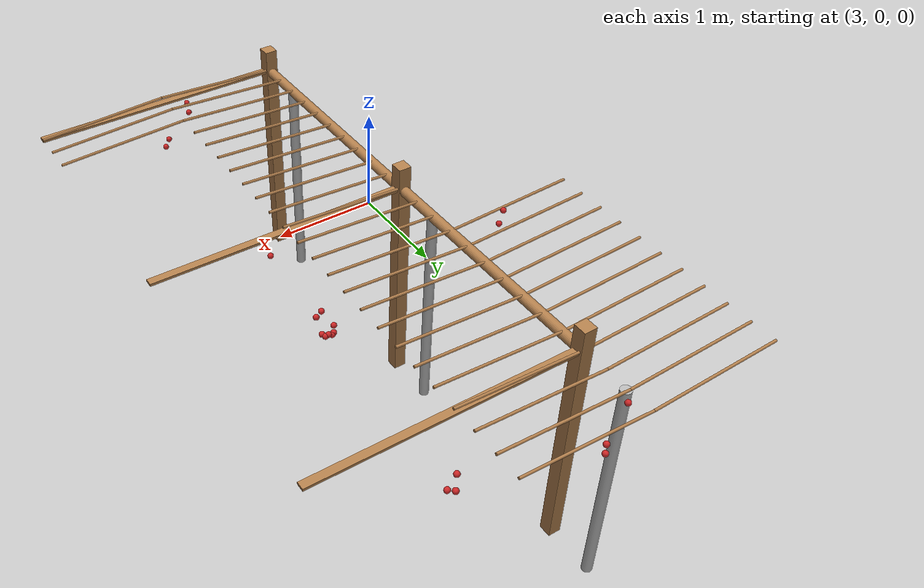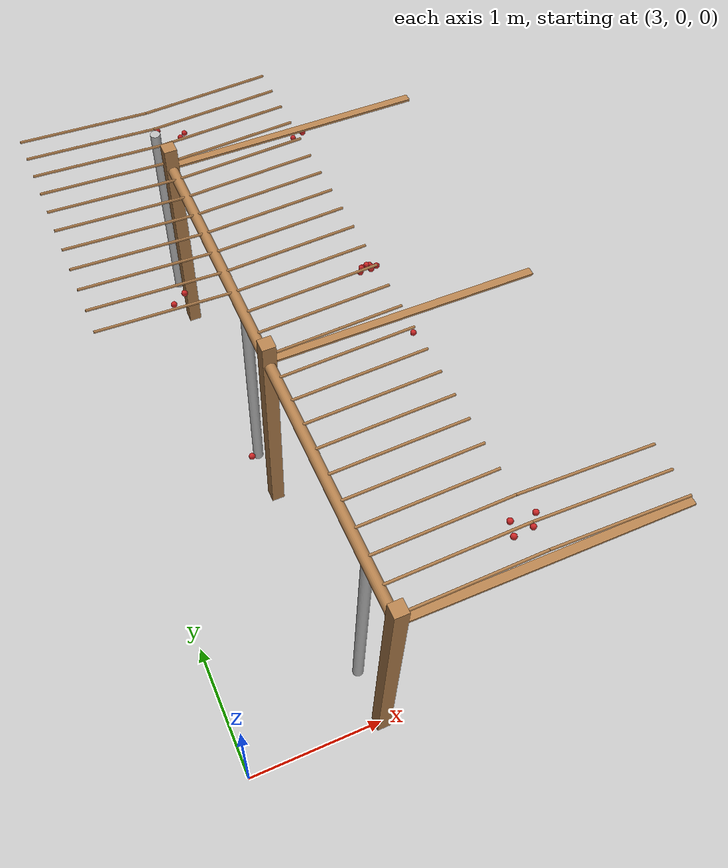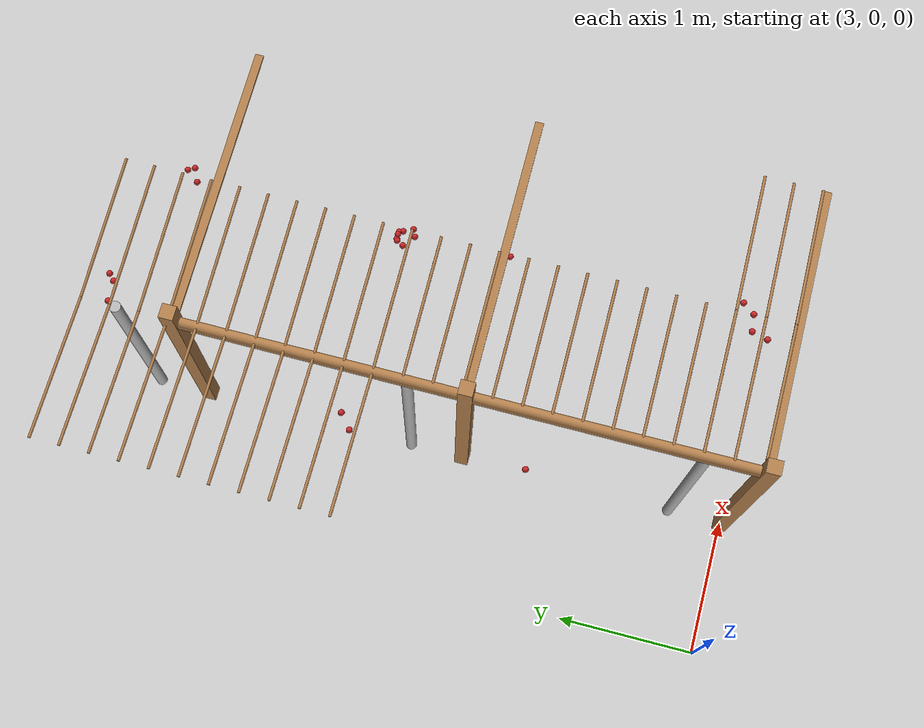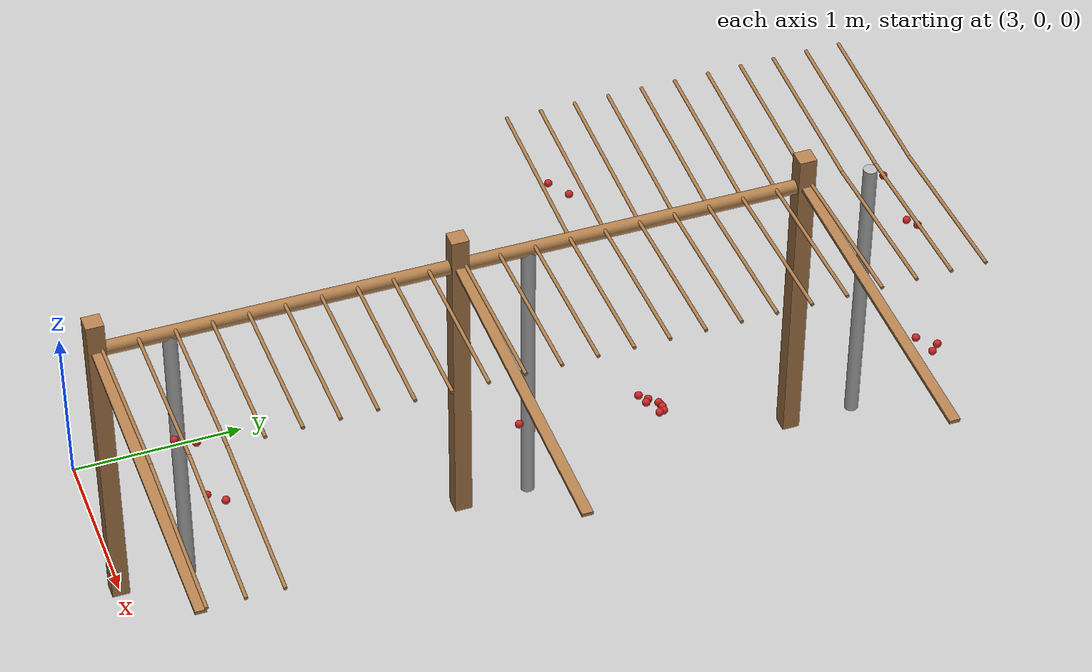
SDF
<sdf version="1.4">
 <model name="pergola">
  <include><name>post_22</name><pose>4.0 0.0 0 0 0 0</pose><uri>model://post</uri></include>
  <include><name>post_23</name><pose>4.0 2.0 0 0 0 0</pose><uri>model://post</uri></include>
  <include><name>post_24</name><pose>4.0 4.0 0 0 0 0</pose><uri>model://post</uri></include>
  <link name="beam_22">
   <pose>5.0 0.0 1.81 0 0 0</pose>
   <collision name="collision"><geometry><box><size>2.0 0.06 0.02</size></box></geometry></collision>
   <visual name="visual">
    <geometry><box><size>2.0 0.06 0.02</size></box></geometry>
    <material><script><name>Gazebo/Wood</name></script></material>
   </visual>
   <inertial>
    <mass>5</mass>
    <inertia>
     <ixx>0.0016666666666666668</ixx>
     <ixy>0.0</ixy>
     <ixz>0.0</ixz>
     <iyy>1.6681666666666664</iyy>
     <iyz>0.0</iyz>
     <izz>1.6668333333333332</izz>
    </inertia>
   </inertial>
  </link>
  <link name="beam_23">
   <pose>5.0 2.0 1.81 0 0 0</pose>
   <collision name="collision"><geometry><box><size>2.0 0.06 0.02</size></box></geometry></collision>
   <visual name="visual">
    <geometry><box><size>2.0 0.06 0.02</size></box></geometry>
    <material><script><name>Gazebo/Wood</name></script></material>
   </visual>
   <inertial>
    <mass>5</mass>
    <inertia>
     <ixx>0.0016666666666666668</ixx>
     <ixy>0.0</ixy>
     <ixz>0.0</ixz>
     <iyy>1.6681666666666664</iyy>
     <iyz>0.0</iyz>
     <izz>1.6668333333333332</izz>
    </inertia>
   </inertial>
  </link>
  <link name="beam_24">
   <pose>5.0 4.0 1.81 0 0 0</pose>
   <collision name="collision"><geometry><box><size>2.0 0.06 0.02</size></box></geometry></collision>
   <visual name="visual">
    <geometry><box><size>2.0 0.06 0.02</size></box></geometry>
    <material><script><name>Gazebo/Wood</name></script></material>
   </visual>
   <inertial>
    <mass>5</mass>
    <inertia>
     <ixx>0.0016666666666666668</ixx>
     <ixy>0.0</ixy>
     <ixz>0.0</ixz>
     <iyy>1.6681666666666664</iyy>
     <iyz>0.0</iyz>
     <izz>1.6668333333333332</izz>
    </inertia>
   </inertial>
  </link>
  <include><name>tree_20</name><pose>4.0 0.4 0 0 0 0</pose><uri>model://tree_trunk</uri></include>
  <include><name>tree_21</name><pose>4.0 2.4 0 0 0 0</pose><uri>model://tree_trunk</uri></include>
  <include><name>tree_22</name><pose>4.0 4.4 0 0 0 0</pose><uri>model://tree_trunk</uri></include>
  <link name="baseBranch_20">
   <pose>4.0 1.0 1.8 1.5707963267948966 0 0</pose>
   <collision name="collision">
    <geometry><cylinder><radius>0.04</radius><length>1.94</length></cylinder></geometry>
   </collision>
   <visual name="visual">
    <geometry><cylinder><radius>0.04</radius><length>1.94</length></cylinder></geometry>
    <material><script><name>Gazebo/WoodFloor</name></script></material>
   </visual>
   <inertial>
    <mass>10</mass>
    <inertia>
     <ixx>3.140333333333333</ixx>
     <ixy>0.0</ixy>
     <ixz>0.0</ixz>
     <iyy>3.140333333333333</iyy>
     <iyz>0.0</iyz>
     <izz>0.008</izz>
    </inertia>
   </inertial>
  </link>
  <link name="baseBranch_21">
   <pose>4.0 3.0 1.8 1.5707963267948966 0 0</pose>
   <collision name="collision">
    <geometry><cylinder><radius>0.04</radius><length>1.94</length></cylinder></geometry>
   </collision>
   <visual name="visual">
    <geometry><cylinder><radius>0.04</radius><length>1.94</length></cylinder></geometry>
    <material><script><name>Gazebo/WoodFloor</name></script></material>
   </visual>
   <inertial>
    <mass>10</mass>
    <inertia>
     <ixx>3.140333333333333</ixx>
     <ixy>0.0</ixy>
     <ixz>0.0</ixz>
     <iyy>3.140333333333333</iyy>
     <iyz>0.0</iyz>
     <izz>0.008</izz>
    </inertia>
   </inertial>
  </link>
  <link name="vine_227">
   <pose>3.5 2.63 1.85 0 -1.5208379310729538 0</pose>
   <collision name="collision">
    <geometry><cylinder><radius>0.01</radius><length>1.0012492197250393</length></cylinder></geometry>
   </collision>
   <visual name="visual">
    <geometry><cylinder><radius>0.01</radius><length>1.0012492197250393</length></cylinder></geometry>
    <material><script><name>Gazebo/WoodFloor</name></script></material>
   </visual>
   <inertial>
    <mass>5</mass>
    <inertia>
     <ixx>0.41783333333333345</ixx>
     <ixy>0.0</ixy>
     <ixz>0.0</ixz>
     <iyy>0.41783333333333345</iyy>
     <iyz>0.0</iyz>
     <izz>0.00025</izz>
    </inertia>
   </inertial>
  </link>
  <link name="vine_229">
   <pose>3.5 2.83 1.85 0 -1.5208379310729538 0</pose>
   <collision name="collision">
    <geometry><cylinder><radius>0.01</radius><length>1.0012492197250393</length></cylinder></geometry>
   </collision>
   <visual name="visual">
    <geometry><cylinder><radius>0.01</radius><length>1.0012492197250393</length></cylinder></geometry>
    <material><script><name>Gazebo/WoodFloor</name></script></material>
   </visual>
   <inertial>
    <mass>5</mass>
    <inertia>
     <ixx>0.41783333333333345</ixx>
     <ixy>0.0</ixy>
     <ixz>0.0</ixz>
     <iyy>0.41783333333333345</iyy>
     <iyz>0.0</iyz>
     <izz>0.00025</izz>
    </inertia>
   </inertial>
  </link>
  <link name="vine_231">
   <pose>3.5 3.03 1.85 0 -1.5208379310729538 0</pose>
   <collision name="collision">
    <geometry><cylinder><radius>0.01</radius><length>1.0012492197250393</length></cylinder></geometry>
   </collision>
   <visual name="visual">
    <geometry><cylinder><radius>0.01</radius><length>1.0012492197250393</length></cylinder></geometry>
    <material><script><name>Gazebo/WoodFloor</name></script></material>
   </visual>
   <inertial>
    <mass>5</mass>
    <inertia>
     <ixx>0.41783333333333345</ixx>
     <ixy>0.0</ixy>
     <ixz>0.0</ixz>
     <iyy>0.41783333333333345</iyy>
     <iyz>0.0</iyz>
     <izz>0.00025</izz>
    </inertia>
   </inertial>
  </link>
  <link name="vine_233">
   <pose>3.5 3.23 1.85 0 -1.5208379310729538 0</pose>
   <collision name="collision">
    <geometry><cylinder><radius>0.01</radius><length>1.0012492197250393</length></cylinder></geometry>
   </collision>
   <visual name="visual">
    <geometry><cylinder><radius>0.01</radius><length>1.0012492197250393</length></cylinder></geometry>
    <material><script><name>Gazebo/WoodFloor</name></script></material>
   </visual>
   <inertial>
    <mass>5</mass>
    <inertia>
     <ixx>0.41783333333333345</ixx>
     <ixy>0.0</ixy>
     <ixz>0.0</ixz>
     <iyy>0.41783333333333345</iyy>
     <iyz>0.0</iyz>
     <izz>0.00025</izz>
    </inertia>
   </inertial>
  </link>
  <link name="vine_235">
   <pose>3.5 3.43 1.85 0 -1.5208379310729538 0</pose>
   <collision name="collision">
    <geometry><cylinder><radius>0.01</radius><length>1.0012492197250393</length></cylinder></geometry>
   </collision>
   <visual name="visual">
    <geometry><cylinder><radius>0.01</radius><length>1.0012492197250393</length></cylinder></geometry>
    <material><script><name>Gazebo/WoodFloor</name></script></material>
   </visual>
   <inertial>
    <mass>5</mass>
    <inertia>
     <ixx>0.41783333333333345</ixx>
     <ixy>0.0</ixy>
     <ixz>0.0</ixz>
     <iyy>0.41783333333333345</iyy>
     <iyz>0.0</iyz>
     <izz>0.00025</izz>
    </inertia>
   </inertial>
  </link>
  <link name="vine_237">
   <pose>3.5 3.63 1.85 0 -1.5208379310729538 0</pose>
   <collision name="collision">
    <geometry><cylinder><radius>0.01</radius><length>1.0012492197250393</length></cylinder></geometry>
   </collision>
   <visual name="visual">
    <geometry><cylinder><radius>0.01</radius><length>1.0012492197250393</length></cylinder></geometry>
    <material><script><name>Gazebo/WoodFloor</name></script></material>
   </visual>
   <inertial>
    <mass>5</mass>
    <inertia>
     <ixx>0.41783333333333345</ixx>
     <ixy>0.0</ixy>
     <ixz>0.0</ixz>
     <iyy>0.41783333333333345</iyy>
     <iyz>0.0</iyz>
     <izz>0.00025</izz>
    </inertia>
   </inertial>
  </link>
  <link name="vine_239">
   <pose>3.5 3.83 1.85 0 -1.5208379310729538 0</pose>
   <collision name="collision">
    <geometry><cylinder><radius>0.01</radius><length>1.0012492197250393</length></cylinder></geometry>
   </collision>
   <visual name="visual">
    <geometry><cylinder><radius>0.01</radius><length>1.0012492197250393</length></cylinder></geometry>
    <material><script><name>Gazebo/WoodFloor</name></script></material>
   </visual>
   <inertial>
    <mass>5</mass>
    <inertia>
     <ixx>0.41783333333333345</ixx>
     <ixy>0.0</ixy>
     <ixz>0.0</ixz>
     <iyy>0.41783333333333345</iyy>
     <iyz>0.0</iyz>
     <izz>0.00025</izz>
    </inertia>
   </inertial>
  </link>
  <link name="vine_241">
   <pose>3.5 4.03 1.85 0 -1.5208379310729538 0</pose>
   <collision name="collision">
    <geometry><cylinder><radius>0.01</radius><length>1.0012492197250393</length></cylinder></geometry>
   </collision>
   <visual name="visual">
    <geometry><cylinder><radius>0.01</radius><length>1.0012492197250393</length></cylinder></geometry>
    <material><script><name>Gazebo/WoodFloor</name></script></material>
   </visual>
   <inertial>
    <mass>5</mass>
    <inertia>
     <ixx>0.41783333333333345</ixx>
     <ixy>0.0</ixy>
     <ixz>0.0</ixz>
     <iyy>0.41783333333333345</iyy>
     <iyz>0.0</iyz>
     <izz>0.00025</izz>
    </inertia>
   </inertial>
  </link>
  <link name="vine_243">
   <pose>3.5 4.23 1.85 0 -1.5208379310729538 0</pose>
   <collision name="collision">
    <geometry><cylinder><radius>0.01</radius><length>1.0012492197250393</length></cylinder></geometry>
   </collision>
   <visual name="visual">
    <geometry><cylinder><radius>0.01</radius><length>1.0012492197250393</length></cylinder></geometry>
    <material><script><name>Gazebo/WoodFloor</name></script></material>
   </visual>
   <inertial>
    <mass>5</mass>
    <inertia>
     <ixx>0.41783333333333345</ixx>
     <ixy>0.0</ixy>
     <ixz>0.0</ixz>
     <iyy>0.41783333333333345</iyy>
     <iyz>0.0</iyz>
     <izz>0.00025</izz>
    </inertia>
   </inertial>
  </link>
  <link name="vine_245">
   <pose>3.5 4.430000000000001 1.85 0 -1.5208379310729538 0</pose>
   <collision name="collision">
    <geometry><cylinder><radius>0.01</radius><length>1.0012492197250393</length></cylinder></geometry>
   </collision>
   <visual name="visual">
    <geometry><cylinder><radius>0.01</radius><length>1.0012492197250393</length></cylinder></geometry>
    <material><script><name>Gazebo/WoodFloor</name></script></material>
   </visual>
   <inertial>
    <mass>5</mass>
    <inertia>
     <ixx>0.41783333333333345</ixx>
     <ixy>0.0</ixy>
     <ixz>0.0</ixz>
     <iyy>0.41783333333333345</iyy>
     <iyz>0.0</iyz>
     <izz>0.00025</izz>
    </inertia>
   </inertial>
  </link>
  <link name="vine_247">
   <pose>3.5 4.630000000000001 1.85 0 -1.5208379310729538 0</pose>
   <collision name="collision">
    <geometry><cylinder><radius>0.01</radius><length>1.0012492197250393</length></cylinder></geometry>
   </collision>
   <visual name="visual">
    <geometry><cylinder><radius>0.01</radius><length>1.0012492197250393</length></cylinder></geometry>
    <material><script><name>Gazebo/WoodFloor</name></script></material>
   </visual>
   <inertial>
    <mass>5</mass>
    <inertia>
     <ixx>0.41783333333333345</ixx>
     <ixy>0.0</ixy>
     <ixz>0.0</ixz>
     <iyy>0.41783333333333345</iyy>
     <iyz>0.0</iyz>
     <izz>0.00025</izz>
    </inertia>
   </inertial>
  </link>
  <link name="vine_400">
   <pose>4.5 0.03 1.85 0 1.5208379310729538 0</pose>
   <collision name="collision">
    <geometry><cylinder><radius>0.01</radius><length>1.0012492197250393</length></cylinder></geometry>
   </collision>
   <visual name="visual">
    <geometry><cylinder><radius>0.01</radius><length>1.0012492197250393</length></cylinder></geometry>
    <material><script><name>Gazebo/WoodFloor</name></script></material>
   </visual>
   <inertial>
    <mass>5</mass>
    <inertia>
     <ixx>0.41783333333333345</ixx>
     <ixy>0.0</ixy>
     <ixz>0.0</ixz>
     <iyy>0.41783333333333345</iyy>
     <iyz>0.0</iyz>
     <izz>0.00025</izz>
    </inertia>
   </inertial>
  </link>
  <link name="vine_401">
   <pose>5.5 0.03 1.85 0 -1.5208379310729538 0</pose>
   <collision name="collision">
    <geometry><cylinder><radius>0.01</radius><length>1.0012492197250393</length></cylinder></geometry>
   </collision>
   <visual name="visual">
    <geometry><cylinder><radius>0.01</radius><length>1.0012492197250393</length></cylinder></geometry>
    <material><script><name>Gazebo/WoodFloor</name></script></material>
   </visual>
   <inertial>
    <mass>5</mass>
    <inertia>
     <ixx>0.41783333333333345</ixx>
     <ixy>0.0</ixy>
     <ixz>0.0</ixz>
     <iyy>0.41783333333333345</iyy>
     <iyz>0.0</iyz>
     <izz>0.00025</izz>
    </inertia>
   </inertial>
  </link>
  <link name="vine_402">
   <pose>4.5 0.23 1.85 0 1.5208379310729538 0</pose>
   <collision name="collision">
    <geometry><cylinder><radius>0.01</radius><length>1.0012492197250393</length></cylinder></geometry>
   </collision>
   <visual name="visual">
    <geometry><cylinder><radius>0.01</radius><length>1.0012492197250393</length></cylinder></geometry>
    <material><script><name>Gazebo/WoodFloor</name></script></material>
   </visual>
   <inertial>
    <mass>5</mass>
    <inertia>
     <ixx>0.41783333333333345</ixx>
     <ixy>0.0</ixy>
     <ixz>0.0</ixz>
     <iyy>0.41783333333333345</iyy>
     <iyz>0.0</iyz>
     <izz>0.00025</izz>
    </inertia>
   </inertial>
  </link>
  <link name="vine_403">
   <pose>5.5 0.23 1.85 0 -1.5208379310729538 0</pose>
   <collision name="collision">
    <geometry><cylinder><radius>0.01</radius><length>1.0012492197250393</length></cylinder></geometry>
   </collision>
   <visual name="visual">
    <geometry><cylinder><radius>0.01</radius><length>1.0012492197250393</length></cylinder></geometry>
    <material><script><name>Gazebo/WoodFloor</name></script></material>
   </visual>
   <inertial>
    <mass>5</mass>
    <inertia>
     <ixx>0.41783333333333345</ixx>
     <ixy>0.0</ixy>
     <ixz>0.0</ixz>
     <iyy>0.41783333333333345</iyy>
     <iyz>0.0</iyz>
     <izz>0.00025</izz>
    </inertia>
   </inertial>
  </link>
  <link name="vine_404">
   <pose>4.5 0.43000000000000005 1.85 0 1.5208379310729538 0</pose>
   <collision name="collision">
    <geometry><cylinder><radius>0.01</radius><length>1.0012492197250393</length></cylinder></geometry>
   </collision>
   <visual name="visual">
    <geometry><cylinder><radius>0.01</radius><length>1.0012492197250393</length></cylinder></geometry>
    <material><script><name>Gazebo/WoodFloor</name></script></material>
   </visual>
   <inertial>
    <mass>5</mass>
    <inertia>
     <ixx>0.41783333333333345</ixx>
     <ixy>0.0</ixy>
     <ixz>0.0</ixz>
     <iyy>0.41783333333333345</iyy>
     <iyz>0.0</iyz>
     <izz>0.00025</izz>
    </inertia>
   </inertial>
  </link>
  <link name="vine_405">
   <pose>5.5 0.43000000000000005 1.85 0 -1.5208379310729538 0</pose>
   <collision name="collision">
    <geometry><cylinder><radius>0.01</radius><length>1.0012492197250393</length></cylinder></geometry>
   </collision>
   <visual name="visual">
    <geometry><cylinder><radius>0.01</radius><length>1.0012492197250393</length></cylinder></geometry>
    <material><script><name>Gazebo/WoodFloor</name></script></material>
   </visual>
   <inertial>
    <mass>5</mass>
    <inertia>
     <ixx>0.41783333333333345</ixx>
     <ixy>0.0</ixy>
     <ixz>0.0</ixz>
     <iyy>0.41783333333333345</iyy>
     <iyz>0.0</iyz>
     <izz>0.00025</izz>
    </inertia>
   </inertial>
  </link>
  <link name="vine_406">
   <pose>4.5 0.6300000000000001 1.85 0 1.5208379310729538 0</pose>
   <collision name="collision">
    <geometry><cylinder><radius>0.01</radius><length>1.0012492197250393</length></cylinder></geometry>
   </collision>
   <visual name="visual">
    <geometry><cylinder><radius>0.01</radius><length>1.0012492197250393</length></cylinder></geometry>
    <material><script><name>Gazebo/WoodFloor</name></script></material>
   </visual>
   <inertial>
    <mass>5</mass>
    <inertia>
     <ixx>0.41783333333333345</ixx>
     <ixy>0.0</ixy>
     <ixz>0.0</ixz>
     <iyy>0.41783333333333345</iyy>
     <iyz>0.0</iyz>
     <izz>0.00025</izz>
    </inertia>
   </inertial>
  </link>
  <link name="vine_408">
   <pose>4.5 0.8300000000000001 1.85 0 1.5208379310729538 0</pose>
   <collision name="collision">
    <geometry><cylinder><radius>0.01</radius><length>1.0012492197250393</length></cylinder></geometry>
   </collision>
   <visual name="visual">
    <geometry><cylinder><radius>0.01</radius><length>1.0012492197250393</length></cylinder></geometry>
    <material><script><name>Gazebo/WoodFloor</name></script></material>
   </visual>
   <inertial>
    <mass>5</mass>
    <inertia>
     <ixx>0.41783333333333345</ixx>
     <ixy>0.0</ixy>
     <ixz>0.0</ixz>
     <iyy>0.41783333333333345</iyy>
     <iyz>0.0</iyz>
     <izz>0.00025</izz>
    </inertia>
   </inertial>
  </link>
  <link name="vine_410">
   <pose>4.5 1.03 1.85 0 1.5208379310729538 0</pose>
   <collision name="collision">
    <geometry><cylinder><radius>0.01</radius><length>1.0012492197250393</length></cylinder></geometry>
   </collision>
   <visual name="visual">
    <geometry><cylinder><radius>0.01</radius><length>1.0012492197250393</length></cylinder></geometry>
    <material><script><name>Gazebo/WoodFloor</name></script></material>
   </visual>
   <inertial>
    <mass>5</mass>
    <inertia>
     <ixx>0.41783333333333345</ixx>
     <ixy>0.0</ixy>
     <ixz>0.0</ixz>
     <iyy>0.41783333333333345</iyy>
     <iyz>0.0</iyz>
     <izz>0.00025</izz>
    </inertia>
   </inertial>
  </link>
  <link name="vine_412">
   <pose>4.5 1.2300000000000002 1.85 0 1.5208379310729538 0</pose>
   <collision name="collision">
    <geometry><cylinder><radius>0.01</radius><length>1.0012492197250393</length></cylinder></geometry>
   </collision>
   <visual name="visual">
    <geometry><cylinder><radius>0.01</radius><length>1.0012492197250393</length></cylinder></geometry>
    <material><script><name>Gazebo/WoodFloor</name></script></material>
   </visual>
   <inertial>
    <mass>5</mass>
    <inertia>
     <ixx>0.41783333333333345</ixx>
     <ixy>0.0</ixy>
     <ixz>0.0</ixz>
     <iyy>0.41783333333333345</iyy>
     <iyz>0.0</iyz>
     <izz>0.00025</izz>
    </inertia>
   </inertial>
  </link>
  <link name="vine_414">
   <pose>4.5 1.4300000000000002 1.85 0 1.5208379310729538 0</pose>
   <collision name="collision">
    <geometry><cylinder><radius>0.01</radius><length>1.0012492197250393</length></cylinder></geometry>
   </collision>
   <visual name="visual">
    <geometry><cylinder><radius>0.01</radius><length>1.0012492197250393</length></cylinder></geometry>
    <material><script><name>Gazebo/WoodFloor</name></script></material>
   </visual>
   <inertial>
    <mass>5</mass>
    <inertia>
     <ixx>0.41783333333333345</ixx>
     <ixy>0.0</ixy>
     <ixz>0.0</ixz>
     <iyy>0.41783333333333345</iyy>
     <iyz>0.0</iyz>
     <izz>0.00025</izz>
    </inertia>
   </inertial>
  </link>
  <link name="vine_416">
   <pose>4.5 1.6300000000000001 1.85 0 1.5208379310729538 0</pose>
   <collision name="collision">
    <geometry><cylinder><radius>0.01</radius><length>1.0012492197250393</length></cylinder></geometry>
   </collision>
   <visual name="visual">
    <geometry><cylinder><radius>0.01</radius><length>1.0012492197250393</length></cylinder></geometry>
    <material><script><name>Gazebo/WoodFloor</name></script></material>
   </visual>
   <inertial>
    <mass>5</mass>
    <inertia>
     <ixx>0.41783333333333345</ixx>
     <ixy>0.0</ixy>
     <ixz>0.0</ixz>
     <iyy>0.41783333333333345</iyy>
     <iyz>0.0</iyz>
     <izz>0.00025</izz>
    </inertia>
   </inertial>
  </link>
  <link name="vine_418">
   <pose>4.5 1.83 1.85 0 1.5208379310729538 0</pose>
   <collision name="collision">
    <geometry><cylinder><radius>0.01</radius><length>1.0012492197250393</length></cylinder></geometry>
   </collision>
   <visual name="visual">
    <geometry><cylinder><radius>0.01</radius><length>1.0012492197250393</length></cylinder></geometry>
    <material><script><name>Gazebo/WoodFloor</name></script></material>
   </visual>
   <inertial>
    <mass>5</mass>
    <inertia>
     <ixx>0.41783333333333345</ixx>
     <ixy>0.0</ixy>
     <ixz>0.0</ixz>
     <iyy>0.41783333333333345</iyy>
     <iyz>0.0</iyz>
     <izz>0.00025</izz>
    </inertia>
   </inertial>
  </link>
  <link name="vine_420">
   <pose>4.5 2.03 1.85 0 1.5208379310729538 0</pose>
   <collision name="collision">
    <geometry><cylinder><radius>0.01</radius><length>1.0012492197250393</length></cylinder></geometry>
   </collision>
   <visual name="visual">
    <geometry><cylinder><radius>0.01</radius><length>1.0012492197250393</length></cylinder></geometry>
    <material><script><name>Gazebo/WoodFloor</name></script></material>
   </visual>
   <inertial>
    <mass>5</mass>
    <inertia>
     <ixx>0.41783333333333345</ixx>
     <ixy>0.0</ixy>
     <ixz>0.0</ixz>
     <iyy>0.41783333333333345</iyy>
     <iyz>0.0</iyz>
     <izz>0.00025</izz>
    </inertia>
   </inertial>
  </link>
  <link name="vine_422">
   <pose>4.5 2.23 1.85 0 1.5208379310729538 0</pose>
   <collision name="collision">
    <geometry><cylinder><radius>0.01</radius><length>1.0012492197250393</length></cylinder></geometry>
   </collision>
   <visual name="visual">
    <geometry><cylinder><radius>0.01</radius><length>1.0012492197250393</length></cylinder></geometry>
    <material><script><name>Gazebo/WoodFloor</name></script></material>
   </visual>
   <inertial>
    <mass>5</mass>
    <inertia>
     <ixx>0.41783333333333345</ixx>
     <ixy>0.0</ixy>
     <ixz>0.0</ixz>
     <iyy>0.41783333333333345</iyy>
     <iyz>0.0</iyz>
     <izz>0.00025</izz>
    </inertia>
   </inertial>
  </link>
  <link name="vine_424">
   <pose>4.5 2.43 1.85 0 1.5208379310729538 0</pose>
   <collision name="collision">
    <geometry><cylinder><radius>0.01</radius><length>1.0012492197250393</length></cylinder></geometry>
   </collision>
   <visual name="visual">
    <geometry><cylinder><radius>0.01</radius><length>1.0012492197250393</length></cylinder></geometry>
    <material><script><name>Gazebo/WoodFloor</name></script></material>
   </visual>
   <inertial>
    <mass>5</mass>
    <inertia>
     <ixx>0.41783333333333345</ixx>
     <ixy>0.0</ixy>
     <ixz>0.0</ixz>
     <iyy>0.41783333333333345</iyy>
     <iyz>0.0</iyz>
     <izz>0.00025</izz>
    </inertia>
   </inertial>
  </link>
  <link name="vine_426">
   <pose>4.5 2.63 1.85 0 1.5208379310729538 0</pose>
   <collision name="collision">
    <geometry><cylinder><radius>0.01</radius><length>1.0012492197250393</length></cylinder></geometry>
   </collision>
   <visual name="visual">
    <geometry><cylinder><radius>0.01</radius><length>1.0012492197250393</length></cylinder></geometry>
    <material><script><name>Gazebo/WoodFloor</name></script></material>
   </visual>
   <inertial>
    <mass>5</mass>
    <inertia>
     <ixx>0.41783333333333345</ixx>
     <ixy>0.0</ixy>
     <ixz>0.0</ixz>
     <iyy>0.41783333333333345</iyy>
     <iyz>0.0</iyz>
     <izz>0.00025</izz>
    </inertia>
   </inertial>
  </link>
  <link name="vine_428">
   <pose>4.5 2.83 1.85 0 1.5208379310729538 0</pose>
   <collision name="collision">
    <geometry><cylinder><radius>0.01</radius><length>1.0012492197250393</length></cylinder></geometry>
   </collision>
   <visual name="visual">
    <geometry><cylinder><radius>0.01</radius><length>1.0012492197250393</length></cylinder></geometry>
    <material><script><name>Gazebo/WoodFloor</name></script></material>
   </visual>
   <inertial>
    <mass>5</mass>
    <inertia>
     <ixx>0.41783333333333345</ixx>
     <ixy>0.0</ixy>
     <ixz>0.0</ixz>
     <iyy>0.41783333333333345</iyy>
     <iyz>0.0</iyz>
     <izz>0.00025</izz>
    </inertia>
   </inertial>
  </link>
  <link name="vine_430">
   <pose>4.5 3.03 1.85 0 1.5208379310729538 0</pose>
   <collision name="collision">
    <geometry><cylinder><radius>0.01</radius><length>1.0012492197250393</length></cylinder></geometry>
   </collision>
   <visual name="visual">
    <geometry><cylinder><radius>0.01</radius><length>1.0012492197250393</length></cylinder></geometry>
    <material><script><name>Gazebo/WoodFloor</name></script></material>
   </visual>
   <inertial>
    <mass>5</mass>
    <inertia>
     <ixx>0.41783333333333345</ixx>
     <ixy>0.0</ixy>
     <ixz>0.0</ixz>
     <iyy>0.41783333333333345</iyy>
     <iyz>0.0</iyz>
     <izz>0.00025</izz>
    </inertia>
   </inertial>
  </link>
  <link name="vine_432">
   <pose>4.5 3.23 1.85 0 1.5208379310729538 0</pose>
   <collision name="collision">
    <geometry><cylinder><radius>0.01</radius><length>1.0012492197250393</length></cylinder></geometry>
   </collision>
   <visual name="visual">
    <geometry><cylinder><radius>0.01</radius><length>1.0012492197250393</length></cylinder></geometry>
    <material><script><name>Gazebo/WoodFloor</name></script></material>
   </visual>
   <inertial>
    <mass>5</mass>
    <inertia>
     <ixx>0.41783333333333345</ixx>
     <ixy>0.0</ixy>
     <ixz>0.0</ixz>
     <iyy>0.41783333333333345</iyy>
     <iyz>0.0</iyz>
     <izz>0.00025</izz>
    </inertia>
   </inertial>
  </link>
  <link name="vine_434">
   <pose>4.5 3.43 1.85 0 1.5208379310729538 0</pose>
   <collision name="collision">
    <geometry><cylinder><radius>0.01</radius><length>1.0012492197250393</length></cylinder></geometry>
   </collision>
   <visual name="visual">
    <geometry><cylinder><radius>0.01</radius><length>1.0012492197250393</length></cylinder></geometry>
    <material><script><name>Gazebo/WoodFloor</name></script></material>
   </visual>
   <inertial>
    <mass>5</mass>
    <inertia>
     <ixx>0.41783333333333345</ixx>
     <ixy>0.0</ixy>
     <ixz>0.0</ixz>
     <iyy>0.41783333333333345</iyy>
     <iyz>0.0</iyz>
     <izz>0.00025</izz>
    </inertia>
   </inertial>
  </link>
  <link name="vine_436">
   <pose>4.5 3.63 1.85 0 1.5208379310729538 0</pose>
   <collision name="collision">
    <geometry><cylinder><radius>0.01</radius><length>1.0012492197250393</length></cylinder></geometry>
   </collision>
   <visual name="visual">
    <geometry><cylinder><radius>0.01</radius><length>1.0012492197250393</length></cylinder></geometry>
    <material><script><name>Gazebo/WoodFloor</name></script></material>
   </visual>
   <inertial>
    <mass>5</mass>
    <inertia>
     <ixx>0.41783333333333345</ixx>
     <ixy>0.0</ixy>
     <ixz>0.0</ixz>
     <iyy>0.41783333333333345</iyy>
     <iyz>0.0</iyz>
     <izz>0.00025</izz>
    </inertia>
   </inertial>
  </link>
  <link name="vine_438">
   <pose>4.5 3.83 1.85 0 1.5208379310729538 0</pose>
   <collision name="collision">
    <geometry><cylinder><radius>0.01</radius><length>1.0012492197250393</length></cylinder></geometry>
   </collision>
   <visual name="visual">
    <geometry><cylinder><radius>0.01</radius><length>1.0012492197250393</length></cylinder></geometry>
    <material><script><name>Gazebo/WoodFloor</name></script></material>
   </visual>
   <inertial>
    <mass>5</mass>
    <inertia>
     <ixx>0.41783333333333345</ixx>
     <ixy>0.0</ixy>
     <ixz>0.0</ixz>
     <iyy>0.41783333333333345</iyy>
     <iyz>0.0</iyz>
     <izz>0.00025</izz>
    </inertia>
   </inertial>
  </link>
  <link name="vine_440">
   <pose>4.5 4.03 1.85 0 1.5208379310729538 0</pose>
   <collision name="collision">
    <geometry><cylinder><radius>0.01</radius><length>1.0012492197250393</length></cylinder></geometry>
   </collision>
   <visual name="visual">
    <geometry><cylinder><radius>0.01</radius><length>1.0012492197250393</length></cylinder></geometry>
    <material><script><name>Gazebo/WoodFloor</name></script></material>
   </visual>
   <inertial>
    <mass>5</mass>
    <inertia>
     <ixx>0.41783333333333345</ixx>
     <ixy>0.0</ixy>
     <ixz>0.0</ixz>
     <iyy>0.41783333333333345</iyy>
     <iyz>0.0</iyz>
     <izz>0.00025</izz>
    </inertia>
   </inertial>
  </link>
  <link name="vine_442">
   <pose>4.5 4.23 1.85 0 1.5208379310729538 0</pose>
   <collision name="collision">
    <geometry><cylinder><radius>0.01</radius><length>1.0012492197250393</length></cylinder></geometry>
   </collision>
   <visual name="visual">
    <geometry><cylinder><radius>0.01</radius><length>1.0012492197250393</length></cylinder></geometry>
    <material><script><name>Gazebo/WoodFloor</name></script></material>
   </visual>
   <inertial>
    <mass>5</mass>
    <inertia>
     <ixx>0.41783333333333345</ixx>
     <ixy>0.0</ixy>
     <ixz>0.0</ixz>
     <iyy>0.41783333333333345</iyy>
     <iyz>0.0</iyz>
     <izz>0.00025</izz>
    </inertia>
   </inertial>
  </link>
  <link name="vine_444">
   <pose>4.5 4.430000000000001 1.85 0 1.5208379310729538 0</pose>
   <collision name="collision">
    <geometry><cylinder><radius>0.01</radius><length>1.0012492197250393</length></cylinder></geometry>
   </collision>
   <visual name="visual">
    <geometry><cylinder><radius>0.01</radius><length>1.0012492197250393</length></cylinder></geometry>
    <material><script><name>Gazebo/WoodFloor</name></script></material>
   </visual>
   <inertial>
    <mass>5</mass>
    <inertia>
     <ixx>0.41783333333333345</ixx>
     <ixy>0.0</ixy>
     <ixz>0.0</ixz>
     <iyy>0.41783333333333345</iyy>
     <iyz>0.0</iyz>
     <izz>0.00025</izz>
    </inertia>
   </inertial>
  </link>
  <link name="vine_446">
   <pose>4.5 4.630000000000001 1.85 0 1.5208379310729538 0</pose>
   <collision name="collision">
    <geometry><cylinder><radius>0.01</radius><length>1.0012492197250393</length></cylinder></geometry>
   </collision>
   <visual name="visual">
    <geometry><cylinder><radius>0.01</radius><length>1.0012492197250393</length></cylinder></geometry>
    <material><script><name>Gazebo/WoodFloor</name></script></material>
   </visual>
   <inertial>
    <mass>5</mass>
    <inertia>
     <ixx>0.41783333333333345</ixx>
     <ixy>0.0</ixy>
     <ixz>0.0</ixz>
     <iyy>0.41783333333333345</iyy>
     <iyz>0.0</iyz>
     <izz>0.00025</izz>
    </inertia>
   </inertial>
  </link>
  <link name="fruit_37">
   <pose>3.6881444029858343 1.5104205677798552 1.5284846977882884 0 0 0</pose>
   <collision name="fruit_collision_37"><geometry><sphere><radius>0.022</radius></sphere></geometry></collision>
   <visual name="visual">
    <geometry><sphere><radius>0.022</radius></sphere></geometry>
    <material><script><name>Gazebo/Red</name></script></material>
   </visual>
   <inertial>
    <mass>0.05</mass>
    <inertia>
     <ixx>9.679999999999999e-06</ixx>
     <ixy>0.0</ixy>
     <ixz>0.0</ixz>
     <iyy>9.679999999999999e-06</iyy>
     <iyz>0.0</iyz>
     <izz>9.679999999999999e-06</izz>
    </inertia>
   </inertial>
   <sensor name="fruit_contact_37" type="contact">
    <contact><collision>fruit_collision_37</collision></contact>
   </sensor>
  </link>
  <link name="fruit_68">
   <pose>5.084092202515587 4.211096754929919 1.535949829978495 0 0 0</pose>
   <collision name="fruit_collision_68"><geometry><sphere><radius>0.022</radius></sphere></geometry></collision>
   <visual name="visual">
    <geometry><sphere><radius>0.022</radius></sphere></geometry>
    <material><script><name>Gazebo/Red</name></script></material>
   </visual>
   <inertial>
    <mass>0.05</mass>
    <inertia>
     <ixx>9.679999999999999e-06</ixx>
     <ixy>0.0</ixy>
     <ixz>0.0</ixz>
     <iyy>9.679999999999999e-06</iyy>
     <iyz>0.0</iyz>
     <izz>9.679999999999999e-06</izz>
    </inertia>
   </inertial>
   <sensor name="fruit_contact_68" type="contact">
    <contact><collision>fruit_collision_68</collision></contact>
   </sensor>
  </link>
  <link name="fruit_102">
   <pose>5.06030288011874 2.6343134737981253 1.5882531132324056 0 0 0</pose>
   <collision name="fruit_collision_102"><geometry><sphere><radius>0.022</radius></sphere></geometry></collision>
   <visual name="visual">
    <geometry><sphere><radius>0.022</radius></sphere></geometry>
    <material><script><name>Gazebo/Red</name></script></material>
   </visual>
   <inertial>
    <mass>0.05</mass>
    <inertia>
     <ixx>9.679999999999999e-06</ixx>
     <ixy>0.0</ixy>
     <ixz>0.0</ixz>
     <iyy>9.679999999999999e-06</iyy>
     <iyz>0.0</iyz>
     <izz>9.679999999999999e-06</izz>
    </inertia>
   </inertial>
   <sensor name="fruit_contact_102" type="contact">
    <contact><collision>fruit_collision_102</collision></contact>
   </sensor>
  </link>
  <link name="fruit_171">
   <pose>3.5781953544128244 2.666300119348341 1.851180715979325 0 0 0</pose>
   <collision name="fruit_collision_171"><geometry><sphere><radius>0.022</radius></sphere></geometry></collision>
   <visual name="visual">
    <geometry><sphere><radius>0.022</radius></sphere></geometry>
    <material><script><name>Gazebo/Red</name></script></material>
   </visual>
   <inertial>
    <mass>0.05</mass>
    <inertia>
     <ixx>9.679999999999999e-06</ixx>
     <ixy>0.0</ixy>
     <ixz>0.0</ixz>
     <iyy>9.679999999999999e-06</iyy>
     <iyz>0.0</iyz>
     <izz>9.679999999999999e-06</izz>
    </inertia>
   </inertial>
   <sensor name="fruit_contact_171" type="contact">
    <contact><collision>fruit_collision_171</collision></contact>
   </sensor>
  </link>
  <link name="fruit_177">
   <pose>4.230039177099603 4.53151740617072 1.5796672864148733 0 0 0</pose>
   <collision name="fruit_collision_177"><geometry><sphere><radius>0.022</radius></sphere></geometry></collision>
   <visual name="visual">
    <geometry><sphere><radius>0.022</radius></sphere></geometry>
    <material><script><name>Gazebo/Red</name></script></material>
   </visual>
   <inertial>
    <mass>0.05</mass>
    <inertia>
     <ixx>9.679999999999999e-06</ixx>
     <ixy>0.0</ixy>
     <ixz>0.0</ixz>
     <iyy>9.679999999999999e-06</iyy>
     <iyz>0.0</iyz>
     <izz>9.679999999999999e-06</izz>
    </inertia>
   </inertial>
   <sensor name="fruit_contact_177" type="contact">
    <contact><collision>fruit_collision_177</collision></contact>
   </sensor>
  </link>
  <link name="fruit_204">
   <pose>4.0362051652236 4.46451897713141 1.7642928985334565 0 0 0</pose>
   <collision name="fruit_collision_204"><geometry><sphere><radius>0.022</radius></sphere></geometry></collision>
   <visual name="visual">
    <geometry><sphere><radius>0.022</radius></sphere></geometry>
    <material><script><name>Gazebo/Red</name></script></material>
   </visual>
   <inertial>
    <mass>0.05</mass>
    <inertia>
     <ixx>9.679999999999999e-06</ixx>
     <ixy>0.0</ixy>
     <ixz>0.0</ixz>
     <iyy>9.679999999999999e-06</iyy>
     <iyz>0.0</iyz>
     <izz>9.679999999999999e-06</izz>
    </inertia>
   </inertial>
   <sensor name="fruit_contact_204" type="contact">
    <contact><collision>fruit_collision_204</collision></contact>
   </sensor>
  </link>
  <link name="fruit_232">
   <pose>5.01098787751159 2.7098665952484478 1.4939386227021798 0 0 0</pose>
   <collision name="fruit_collision_232"><geometry><sphere><radius>0.022</radius></sphere></geometry></collision>
   <visual name="visual">
    <geometry><sphere><radius>0.022</radius></sphere></geometry>
    <material><script><name>Gazebo/Red</name></script></material>
   </visual>
   <inertial>
    <mass>0.05</mass>
    <inertia>
     <ixx>9.679999999999999e-06</ixx>
     <ixy>0.0</ixy>
     <ixz>0.0</ixz>
     <iyy>9.679999999999999e-06</iyy>
     <iyz>0.0</iyz>
     <izz>9.679999999999999e-06</izz>
    </inertia>
   </inertial>
   <sensor name="fruit_contact_232" type="contact">
    <contact><collision>fruit_collision_232</collision></contact>
   </sensor>
  </link>
  <link name="fruit_320">
   <pose>4.854562352908181 0.1921829839213146 1.865224266122597 0 0 0</pose>
   <collision name="fruit_collision_320"><geometry><sphere><radius>0.022</radius></sphere></geometry></collision>
   <visual name="visual">
    <geometry><sphere><radius>0.022</radius></sphere></geometry>
    <material><script><name>Gazebo/Red</name></script></material>
   </visual>
   <inertial>
    <mass>0.05</mass>
    <inertia>
     <ixx>9.679999999999999e-06</ixx>
     <ixy>0.0</ixy>
     <ixz>0.0</ixz>
     <iyy>9.679999999999999e-06</iyy>
     <iyz>0.0</iyz>
     <izz>9.679999999999999e-06</izz>
    </inertia>
   </inertial>
   <sensor name="fruit_contact_320" type="contact">
    <contact><collision>fruit_collision_320</collision></contact>
   </sensor>
  </link>
  <link name="fruit_329">
   <pose>5.080479929278285 0.286707937592754 1.652781488962157 0 0 0</pose>
   <collision name="fruit_collision_329"><geometry><sphere><radius>0.022</radius></sphere></geometry></collision>
   <visual name="visual">
    <geometry><sphere><radius>0.022</radius></sphere></geometry>
    <material><script><name>Gazebo/Red</name></script></material>
   </visual>
   <inertial>
    <mass>0.05</mass>
    <inertia>
     <ixx>9.679999999999999e-06</ixx>
     <ixy>0.0</ixy>
     <ixz>0.0</ixz>
     <iyy>9.679999999999999e-06</iyy>
     <iyz>0.0</iyz>
     <izz>9.679999999999999e-06</izz>
    </inertia>
   </inertial>
   <sensor name="fruit_contact_329" type="contact">
    <contact><collision>fruit_collision_329</collision></contact>
   </sensor>
  </link>
  <link name="fruit_339">
   <pose>5.078681577386612 1.9659034159449864 1.6100266178451081 0 0 0</pose>
   <collision name="fruit_collision_339"><geometry><sphere><radius>0.022</radius></sphere></geometry></collision>
   <visual name="visual">
    <geometry><sphere><radius>0.022</radius></sphere></geometry>
    <material><script><name>Gazebo/Red</name></script></material>
   </visual>
   <inertial>
    <mass>0.05</mass>
    <inertia>
     <ixx>9.679999999999999e-06</ixx>
     <ixy>0.0</ixy>
     <ixz>0.0</ixz>
     <iyy>9.679999999999999e-06</iyy>
     <iyz>0.0</iyz>
     <izz>9.679999999999999e-06</izz>
    </inertia>
   </inertial>
   <sensor name="fruit_contact_339" type="contact">
    <contact><collision>fruit_collision_339</collision></contact>
   </sensor>
  </link>
  <link name="fruit_362">
   <pose>4.277423503506998 4.5765518513235035 1.5698659710201892 0 0 0</pose>
   <collision name="fruit_collision_362"><geometry><sphere><radius>0.022</radius></sphere></geometry></collision>
   <visual name="visual">
    <geometry><sphere><radius>0.022</radius></sphere></geometry>
    <material><script><name>Gazebo/Red</name></script></material>
   </visual>
   <inertial>
    <mass>0.05</mass>
    <inertia>
     <ixx>9.679999999999999e-06</ixx>
     <ixy>0.0</ixy>
     <ixz>0.0</ixz>
     <iyy>9.679999999999999e-06</iyy>
     <iyz>0.0</iyz>
     <izz>9.679999999999999e-06</izz>
    </inertia>
   </inertial>
   <sensor name="fruit_contact_362" type="contact">
    <contact><collision>fruit_collision_362</collision></contact>
   </sensor>
  </link>
  <link name="fruit_403">
   <pose>5.085013600418792 2.7632536329328765 1.4883935990870014 0 0 0</pose>
   <collision name="fruit_collision_403"><geometry><sphere><radius>0.022</radius></sphere></geometry></collision>
   <visual name="visual">
    <geometry><sphere><radius>0.022</radius></sphere></geometry>
    <material><script><name>Gazebo/Red</name></script></material>
   </visual>
   <inertial>
    <mass>0.05</mass>
    <inertia>
     <ixx>9.679999999999999e-06</ixx>
     <ixy>0.0</ixy>
     <ixz>0.0</ixz>
     <iyy>9.679999999999999e-06</iyy>
     <iyz>0.0</iyz>
     <izz>9.679999999999999e-06</izz>
    </inertia>
   </inertial>
   <sensor name="fruit_contact_403" type="contact">
    <contact><collision>fruit_collision_403</collision></contact>
   </sensor>
  </link>
  <link name="fruit_420">
   <pose>5.189437878554985 4.262734808461353 1.5142881194407058 0 0 0</pose>
   <collision name="fruit_collision_420"><geometry><sphere><radius>0.022</radius></sphere></geometry></collision>
   <visual name="visual">
    <geometry><sphere><radius>0.022</radius></sphere></geometry>
    <material><script><name>Gazebo/Red</name></script></material>
   </visual>
   <inertial>
    <mass>0.05</mass>
    <inertia>
     <ixx>9.679999999999999e-06</ixx>
     <ixy>0.0</ixy>
     <ixz>0.0</ixz>
     <iyy>9.679999999999999e-06</iyy>
     <iyz>0.0</iyz>
     <izz>9.679999999999999e-06</izz>
    </inertia>
   </inertial>
   <sensor name="fruit_contact_420" type="contact">
    <contact><collision>fruit_collision_420</collision></contact>
   </sensor>
  </link>
  <link name="fruit_487">
   <pose>5.056456052575194 2.765061358056188 1.4751535615296885 0 0 0</pose>
   <collision name="fruit_collision_487"><geometry><sphere><radius>0.022</radius></sphere></geometry></collision>
   <visual name="visual">
    <geometry><sphere><radius>0.022</radius></sphere></geometry>
    <material><script><name>Gazebo/Red</name></script></material>
   </visual>
   <inertial>
    <mass>0.05</mass>
    <inertia>
     <ixx>9.679999999999999e-06</ixx>
     <ixy>0.0</ixy>
     <ixz>0.0</ixz>
     <iyy>9.679999999999999e-06</iyy>
     <iyz>0.0</iyz>
     <izz>9.679999999999999e-06</izz>
    </inertia>
   </inertial>
   <sensor name="fruit_contact_487" type="contact">
    <contact><collision>fruit_collision_487</collision></contact>
   </sensor>
  </link>
  <link name="fruit_507">
   <pose>5.041457269724702 2.7576182111508505 1.4818990702035897 0 0 0</pose>
   <collision name="fruit_collision_507"><geometry><sphere><radius>0.022</radius></sphere></geometry></collision>
   <visual name="visual">
    <geometry><sphere><radius>0.022</radius></sphere></geometry>
    <material><script><name>Gazebo/Red</name></script></material>
   </visual>
   <inertial>
    <mass>0.05</mass>
    <inertia>
     <ixx>9.679999999999999e-06</ixx>
     <ixy>0.0</ixy>
     <ixz>0.0</ixz>
     <iyy>9.679999999999999e-06</iyy>
     <iyz>0.0</iyz>
     <izz>9.679999999999999e-06</izz>
    </inertia>
   </inertial>
   <sensor name="fruit_contact_507" type="contact">
    <contact><collision>fruit_collision_507</collision></contact>
   </sensor>
  </link>
  <link name="fruit_648">
   <pose>5.11462427207372 2.6576234996804686 1.5784795222983974 0 0 0</pose>
   <collision name="fruit_collision_648"><geometry><sphere><radius>0.022</radius></sphere></geometry></collision>
   <visual name="visual">
    <geometry><sphere><radius>0.022</radius></sphere></geometry>
    <material><script><name>Gazebo/Red</name></script></material>
   </visual>
   <inertial>
    <mass>0.05</mass>
    <inertia>
     <ixx>9.679999999999999e-06</ixx>
     <ixy>0.0</ixy>
     <ixz>0.0</ixz>
     <iyy>9.679999999999999e-06</iyy>
     <iyz>0.0</iyz>
     <izz>9.679999999999999e-06</izz>
    </inertia>
   </inertial>
   <sensor name="fruit_contact_648" type="contact">
    <contact><collision>fruit_collision_648</collision></contact>
   </sensor>
  </link>
  <link name="fruit_670">
   <pose>5.145059332911146 0.36833132339782865 1.6495634807308148 0 0 0</pose>
   <collision name="fruit_collision_670"><geometry><sphere><radius>0.022</radius></sphere></geometry></collision>
   <visual name="visual">
    <geometry><sphere><radius>0.022</radius></sphere></geometry>
    <material><script><name>Gazebo/Red</name></script></material>
   </visual>
   <inertial>
    <mass>0.05</mass>
    <inertia>
     <ixx>9.679999999999999e-06</ixx>
     <ixy>0.0</ixy>
     <ixz>0.0</ixz>
     <iyy>9.679999999999999e-06</iyy>
     <iyz>0.0</iyz>
     <izz>9.679999999999999e-06</izz>
    </inertia>
   </inertial>
   <sensor name="fruit_contact_670" type="contact">
    <contact><collision>fruit_collision_670</collision></contact>
   </sensor>
  </link>
  <link name="fruit_693">
   <pose>5.107904292138336 2.761296220815445 1.4823546284028182 0 0 0</pose>
   <collision name="fruit_collision_693"><geometry><sphere><radius>0.022</radius></sphere></geometry></collision>
   <visual name="visual">
    <geometry><sphere><radius>0.022</radius></sphere></geometry>
    <material><script><name>Gazebo/Red</name></script></material>
   </visual>
   <inertial>
    <mass>0.05</mass>
    <inertia>
     <ixx>9.679999999999999e-06</ixx>
     <ixy>0.0</ixy>
     <ixz>0.0</ixz>
     <iyy>9.679999999999999e-06</iyy>
     <iyz>0.0</iyz>
     <izz>9.679999999999999e-06</izz>
    </inertia>
   </inertial>
   <sensor name="fruit_contact_693" type="contact">
    <contact><collision>fruit_collision_693</collision></contact>
   </sensor>
  </link>
  <link name="fruit_766">
   <pose>5.158797939625582 4.302843300303041 1.5282699144317453 0 0 0</pose>
   <collision name="fruit_collision_766"><geometry><sphere><radius>0.022</radius></sphere></geometry></collision>
   <visual name="visual">
    <geometry><sphere><radius>0.022</radius></sphere></geometry>
    <material><script><name>Gazebo/Red</name></script></material>
   </visual>
   <inertial>
    <mass>0.05</mass>
    <inertia>
     <ixx>9.679999999999999e-06</ixx>
     <ixy>0.0</ixy>
     <ixz>0.0</ixz>
     <iyy>9.679999999999999e-06</iyy>
     <iyz>0.0</iyz>
     <izz>9.679999999999999e-06</izz>
    </inertia>
   </inertial>
   <sensor name="fruit_contact_766" type="contact">
    <contact><collision>fruit_collision_766</collision></contact>
   </sensor>
  </link>
  <link name="fruit_772">
   <pose>4.890046777858701 0.2978680296645856 1.8464592899880212 0 0 0</pose>
   <collision name="fruit_collision_772"><geometry><sphere><radius>0.022</radius></sphere></geometry></collision>
   <visual name="visual">
    <geometry><sphere><radius>0.022</radius></sphere></geometry>
    <material><script><name>Gazebo/Red</name></script></material>
   </visual>
   <inertial>
    <mass>0.05</mass>
    <inertia>
     <ixx>9.679999999999999e-06</ixx>
     <ixy>0.0</ixy>
     <ixz>0.0</ixz>
     <iyy>9.679999999999999e-06</iyy>
     <iyz>0.0</iyz>
     <izz>9.679999999999999e-06</izz>
    </inertia>
   </inertial>
   <sensor name="fruit_contact_772" type="contact">
    <contact><collision>fruit_collision_772</collision></contact>
   </sensor>
  </link>
  <link name="fruit_799">
   <pose>5.117235693384055 2.734203331155858 1.484769139862595 0 0 0</pose>
   <collision name="fruit_collision_799"><geometry><sphere><radius>0.022</radius></sphere></geometry></collision>
   <visual name="visual">
    <geometry><sphere><radius>0.022</radius></sphere></geometry>
    <material><script><name>Gazebo/Red</name></script></material>
   </visual>
   <inertial>
    <mass>0.05</mass>
    <inertia>
     <ixx>9.679999999999999e-06</ixx>
     <ixy>0.0</ixy>
     <ixz>0.0</ixz>
     <iyy>9.679999999999999e-06</iyy>
     <iyz>0.0</iyz>
     <izz>9.679999999999999e-06</izz>
    </inertia>
   </inertial>
   <sensor name="fruit_contact_799" type="contact">
    <contact><collision>fruit_collision_799</collision></contact>
   </sensor>
  </link>
  <link name="fruit_934">
   <pose>3.6798434265156543 2.7503359932370004 1.8302639290685785 0 0 0</pose>
   <collision name="fruit_collision_934"><geometry><sphere><radius>0.022</radius></sphere></geometry></collision>
   <visual name="visual">
    <geometry><sphere><radius>0.022</radius></sphere></geometry>
    <material><script><name>Gazebo/Red</name></script></material>
   </visual>
   <inertial>
    <mass>0.05</mass>
    <inertia>
     <ixx>9.679999999999999e-06</ixx>
     <ixy>0.0</ixy>
     <ixz>0.0</ixz>
     <iyy>9.679999999999999e-06</iyy>
     <iyz>0.0</iyz>
     <izz>9.679999999999999e-06</izz>
    </inertia>
   </inertial>
   <sensor name="fruit_contact_934" type="contact">
    <contact><collision>fruit_collision_934</collision></contact>
   </sensor>
  </link>
 </model>
</sdf>
